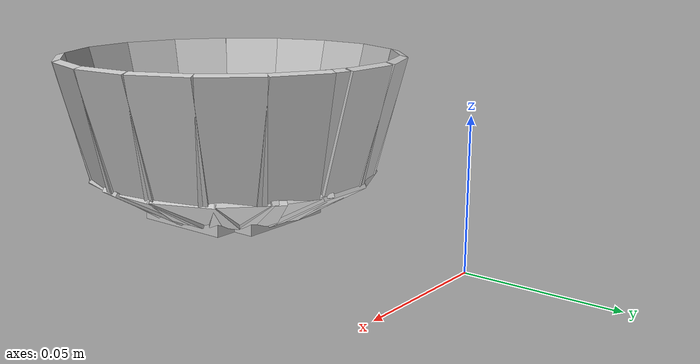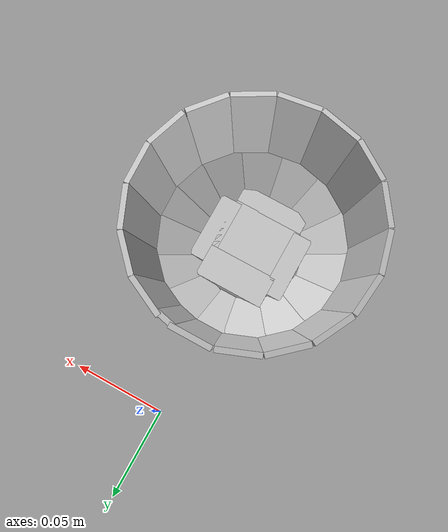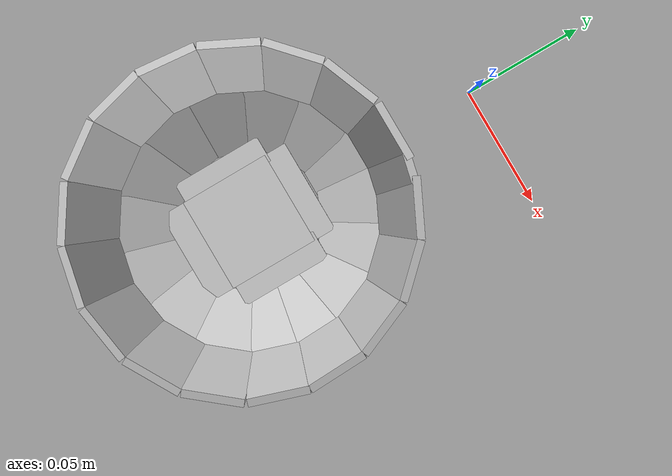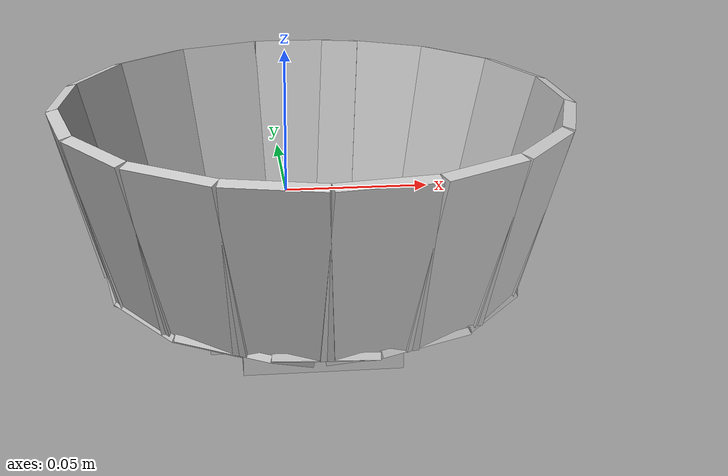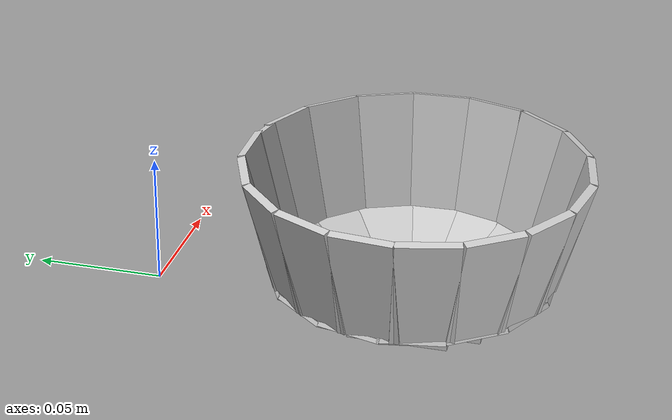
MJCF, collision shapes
<mujoco model="akita_black_bowl_interference_light_grey_large">
  <asset>
    <texture file="akita_black_bowl_interference_light_grey_large_texture.png" name="tex-akita_black_bowl_interference_light_grey_large" type="2d" />
    <material name="akita_black_bowl_interference_light_grey_large" reflectance="0.5" texrepeat="1 1" texture="tex-akita_black_bowl_interference_light_grey_large" texuniform="false" />
    <mesh file="visual/akita_bowl_vis.msh" name="akita_bowl_vis" scale="0.84 0.84 0.84" />
  </asset>
  <worldbody>
    <body>
      <body name="object" pos="0 -0.1 0">
        <geom solimp="0.998 0.998 0.001" solref="0.001 1" density="100" friction="0.95 0.3 0.1" type="mesh" mesh="akita_bowl_vis" conaffinity="0" contype="0" group="1" material="akita_black_bowl_interference_light_grey_large" />
        <geom solimp="0.998 0.998 0.001" solref="0.001 1" density="100" friction="0.95 0.3 0.1" type="box" pos="-0.00012 0.04033 0.01127" quat="0.60990 -0.35780 -0.35780 -0.60990" size="0.00085 0.01190 0.01424" group="0" rgba="0.8 0.8 0.8 0.3" />
        <geom solimp="0.998 0.998 0.001" solref="0.001 1" density="100" friction="0.95 0.3 0.1" type="box" pos="-0.01763 0.03620 0.01151" quat="0.45959 -0.42672 0.26704 0.73169" size="0.00085 0.01190 0.01424" group="0" rgba="0.8 0.8 0.8 0.3" />
        <geom solimp="0.998 0.998 0.001" solref="0.001 1" density="100" friction="0.95 0.3 0.1" type="box" pos="-0.03126 0.02530 0.01170" quat="0.29172 -0.47299 0.16619 0.81459" size="0.00085 0.01190 0.01424" group="0" rgba="0.8 0.8 0.8 0.3" />
        <geom solimp="0.998 0.998 0.001" solref="0.001 1" density="100" friction="0.95 0.3 0.1" type="box" pos="-0.03904 0.00952 0.01181" quat="0.10855 -0.49698 0.05658 0.85908" size="0.00085 0.01190 0.01424" group="0" rgba="0.8 0.8 0.8 0.3" />
        <geom solimp="0.998 0.998 0.001" solref="0.001 1" density="100" friction="0.95 0.3 0.1" type="box" pos="-0.03944 -0.00762 0.01181" quat="0.49761 -0.07722 0.86246 0.05074" size="0.00085 0.01190 0.01424" group="0" rgba="0.8 0.8 0.8 0.3" />
        <geom solimp="0.998 0.998 0.001" solref="0.001 1" density="100" friction="0.95 0.3 0.1" type="box" pos="-0.03230 -0.02388 0.01181" quat="0.47408 -0.26597 0.82406 0.15949" size="0.00085 0.01190 0.01424" group="0" rgba="0.8 0.8 0.8 0.3" />
        <geom solimp="0.998 0.998 0.001" solref="0.001 1" density="100" friction="0.95 0.3 0.1" type="box" pos="-0.01868 -0.03557 0.01181" quat="0.42646 -0.44336 0.74380 0.26138" size="0.00085 0.01190 0.01424" group="0" rgba="0.8 0.8 0.8 0.3" />
        <geom solimp="0.998 0.998 0.001" solref="0.001 1" density="100" friction="0.95 0.3 0.1" type="box" pos="-0.00145 -0.04015 0.01181" quat="0.59728 0.35787 0.34946 -0.62695" size="0.00085 0.01190 0.01424" group="0" rgba="0.8 0.8 0.8 0.3" />
        <geom solimp="0.998 0.998 0.001" solref="0.001 1" density="100" friction="0.95 0.3 0.1" type="box" pos="0.01621 -0.03676 0.01181" quat="0.72249 0.27055 0.42070 -0.47731" size="0.00085 0.01190 0.01424" group="0" rgba="0.8 0.8 0.8 0.3" />
        <geom solimp="0.998 0.998 0.001" solref="0.001 1" density="100" friction="0.95 0.3 0.1" type="box" pos="0.03028 -0.02641 0.01181" quat="0.17267 -0.80894 0.30891 0.46945" size="0.00085 0.01190 0.01424" group="0" rgba="0.8 0.8 0.8 0.3" />
        <geom solimp="0.998 0.998 0.001" solref="0.001 1" density="100" friction="0.95 0.3 0.1" type="box" pos="0.03866 -0.01092 0.01181" quat="0.85700 0.06550 0.49588 -0.12397" size="0.00085 0.01190 0.01424" group="0" rgba="0.8 0.8 0.8 0.3" />
        <geom solimp="0.998 0.998 0.001" solref="0.001 1" density="100" friction="0.95 0.3 0.1" type="box" pos="0.03866 -0.01092 0.01181" quat="0.85700 0.06550 0.49588 -0.12397" size="0.00085 0.01190 0.01424" group="0" rgba="0.8 0.8 0.8 0.3" />
        <geom solimp="0.998 0.998 0.001" solref="0.001 1" density="100" friction="0.95 0.3 0.1" type="box" pos="0.04018 0.00026 0.01181" quat="0.86591 -0.00473 0.50017 -0.00248" size="0.00085 0.01190 0.01424" group="0" rgba="0.8 0.8 0.8 0.3" />
        <geom solimp="0.998 0.998 0.001" solref="0.001 1" density="100" friction="0.95 0.3 0.1" type="box" pos="0.03643 0.01693 0.01181" quat="0.84663 -0.11101 0.48771 0.18175" size="0.00085 0.01190 0.01424" group="0" rgba="0.8 0.8 0.8 0.3" />
        <geom solimp="0.998 0.998 0.001" solref="0.001 1" density="100" friction="0.95 0.3 0.1" type="box" pos="0.02587 0.03074 0.01181" quat="0.21392 0.78724 0.36065 -0.45213" size="0.00085 0.01190 0.01424" group="0" rgba="0.8 0.8 0.8 0.3" />
        <geom solimp="0.998 0.998 0.001" solref="0.001 1" density="100" friction="0.95 0.3 0.1" type="box" pos="0.01388 0.03770 0.01181" quat="0.71324 -0.28870 0.40847 0.49101" size="0.00085 0.01190 0.01424" group="0" rgba="0.8 0.8 0.8 0.3" />
        <geom solimp="0.998 0.998 0.001" solref="0.001 1" density="100" friction="0.95 0.3 0.1" type="box" pos="-0.00012 0.05654 0.04040" quat="0.09041 0.70130 0.70130 -0.09041" size="0.00154 0.01121 0.02250" group="0" rgba="0.8 0.8 0.8 0.3" />
        <geom solimp="0.998 0.998 0.001" solref="0.001 1" density="100" friction="0.95 0.3 0.1" type="box" pos="-0.02069 0.05262 0.04040" quat="0.10558 0.55930 0.81905 -0.07209" size="0.00154 0.01121 0.02250" group="0" rgba="0.8 0.8 0.8 0.3" />
        <geom solimp="0.998 0.998 0.001" solref="0.001 1" density="100" friction="0.95 0.3 0.1" type="box" pos="-0.03809 0.04180 0.04040" quat="0.11689 0.40164 0.90683 -0.05176" size="0.00154 0.01121 0.02250" group="0" rgba="0.8 0.8 0.8 0.3" />
        <geom solimp="0.998 0.998 0.001" solref="0.001 1" density="100" friction="0.95 0.3 0.1" type="box" pos="-0.05057 0.02530 0.04040" quat="0.22890 -0.12439 0.02951 0.96502" size="0.00154 0.01121 0.02250" group="0" rgba="0.8 0.8 0.8 0.3" />
        <geom solimp="0.998 0.998 0.001" solref="0.001 1" density="100" friction="0.95 0.3 0.1" type="box" pos="-0.05627 0.00552 0.04040" quat="0.12768 0.04949 0.99056 -0.00638" size="0.00154 0.01121 0.02250" group="0" rgba="0.8 0.8 0.8 0.3" />
        <geom solimp="0.998 0.998 0.001" solref="0.001 1" density="100" friction="0.95 0.3 0.1" type="box" pos="-0.05466 -0.01445 0.04040" quat="0.12679 0.12680 0.01635 -0.98366" size="0.00154 0.01121 0.02250" group="0" rgba="0.8 0.8 0.8 0.3" />
        <geom solimp="0.998 0.998 0.001" solref="0.001 1" density="100" friction="0.95 0.3 0.1" type="box" pos="-0.04590 -0.03301 0.04040" quat="0.12173 -0.30325 0.94430 0.03909" size="0.00154 0.01121 0.02250" group="0" rgba="0.8 0.8 0.8 0.3" />
        <geom solimp="0.998 0.998 0.001" solref="0.001 1" density="100" friction="0.95 0.3 0.1" type="box" pos="-0.03091 -0.04735 0.04040" quat="0.11249 -0.47128 0.87267 0.06075" size="0.00154 0.01121 0.02250" group="0" rgba="0.8 0.8 0.8 0.3" />
        <geom solimp="0.998 0.998 0.001" solref="0.001 1" density="100" friction="0.95 0.3 0.1" type="box" pos="-0.01212 -0.05522 0.04040" quat="0.62080 0.09971 0.08003 -0.77348" size="0.00154 0.01121 0.02250" group="0" rgba="0.8 0.8 0.8 0.3" />
        <geom solimp="0.998 0.998 0.001" solref="0.001 1" density="100" friction="0.95 0.3 0.1" type="box" pos="0.00838 -0.05592 0.04040" quat="0.75082 0.08352 0.09678 -0.64802" size="0.00154 0.01121 0.02250" group="0" rgba="0.8 0.8 0.8 0.3" />
        <geom solimp="0.998 0.998 0.001" solref="0.001 1" density="100" friction="0.95 0.3 0.1" type="box" pos="0.02790 -0.04918 0.04040" quat="0.06445 -0.85651 0.50004 0.11041" size="0.00154 0.01121 0.02250" group="0" rgba="0.8 0.8 0.8 0.3" />
        <geom solimp="0.998 0.998 0.001" solref="0.001 1" density="100" friction="0.95 0.3 0.1" type="box" pos="0.04357 -0.03604 0.04040" quat="0.93283 0.04342 0.12024 -0.33687" size="0.00154 0.01121 0.02250" group="0" rgba="0.8 0.8 0.8 0.3" />
        <geom solimp="0.998 0.998 0.001" solref="0.001 1" density="100" friction="0.95 0.3 0.1" type="box" pos="0.05370 -0.01770 0.04040" quat="0.02040 -0.97909 0.15826 0.12620" size="0.00154 0.01121 0.02250" group="0" rgba="0.8 0.8 0.8 0.3" />
        <geom solimp="0.998 0.998 0.001" solref="0.001 1" density="100" friction="0.95 0.3 0.1" type="box" pos="0.05650 0.00222 0.04040" quat="0.00238 0.99162 0.01844 -0.12782" size="0.00154 0.01121 0.02250" group="0" rgba="0.8 0.8 0.8 0.3" />
        <geom solimp="0.998 0.998 0.001" solref="0.001 1" density="100" friction="0.95 0.3 0.1" type="box" pos="0.05650 0.00222 0.04040" quat="0.00238 0.99162 0.01844 -0.12782" size="0.00154 0.01121 0.02250" group="0" rgba="0.8 0.8 0.8 0.3" />
        <geom solimp="0.998 0.998 0.001" solref="0.001 1" density="100" friction="0.95 0.3 0.1" type="box" pos="0.05209 0.02198 0.04040" quat="0.02524 0.97229 0.19574 -0.12533" size="0.00154 0.01121 0.02250" group="0" rgba="0.8 0.8 0.8 0.3" />
        <geom solimp="0.998 0.998 0.001" solref="0.001 1" density="100" friction="0.95 0.3 0.1" type="box" pos="0.04099 0.03894 0.04040" quat="0.04729 0.92146 0.36683 -0.11878" size="0.00154 0.01121 0.02250" group="0" rgba="0.8 0.8 0.8 0.3" />
        <geom solimp="0.998 0.998 0.001" solref="0.001 1" density="100" friction="0.95 0.3 0.1" type="box" pos="0.02480 0.05081 0.04040" quat="0.06760 0.84175 0.52452 -0.10850" size="0.00154 0.01121 0.02250" group="0" rgba="0.8 0.8 0.8 0.3" />
        <geom solimp="0.998 0.998 0.001" solref="0.001 1" density="100" friction="0.95 0.3 0.1" type="box" pos="0.01267 0.05510 0.04040" quat="0.07953 0.77656 0.61693 -0.10010" size="0.00150 0.00533 0.02246" group="0" rgba="0.8 0.8 0.8 0.3" />
        <geom solimp="0.998 0.998 0.001" solref="0.001 1" density="100" friction="0.95 0.3 0.1" type="box" pos="-0.00000 -0.00090 0.00500" quat="0.70711 0.00000 0.70711 0.00000" size="0.00310 0.01856 0.01940" group="0" rgba="0.8 0.8 0.8 0.3" />
        <geom solimp="0.998 0.998 0.001" solref="0.001 1" density="100" friction="0.95 0.3 0.1" type="box" pos="-0.00000 -0.02425 0.00500" quat="0.70711 0.00000 0.70711 0.00000" size="0.00310 0.00517 0.01940" group="0" rgba="0.8 0.8 0.8 0.3" />
        <geom solimp="0.998 0.998 0.001" solref="0.001 1" density="100" friction="0.95 0.3 0.1" type="box" pos="0.02185 0.00019 0.00500" quat="0.50000 -0.50000 0.50000 0.50000" size="0.00310 0.00594 0.01856" group="0" rgba="0.8 0.8 0.8 0.3" />
        <geom solimp="0.998 0.998 0.001" solref="0.001 1" density="100" friction="0.95 0.3 0.1" type="box" pos="-0.02172 0.00005 0.00500" quat="0.50000 -0.50000 0.50000 0.50000" size="0.00310 0.00544 0.01856" group="0" rgba="0.8 0.8 0.8 0.3" />
        <geom solimp="0.998 0.998 0.001" solref="0.001 1" density="100" friction="0.95 0.3 0.1" type="box" pos="-0.00000 0.01788 0.00500" quat="0.00000 0.70711 0.00000 -0.70711" size="0.00310 0.00889 0.01940" group="0" rgba="0.8 0.8 0.8 0.3" />
      </body>
      <site rgba="0 0 0 0" size="0.00600" pos="0.00000 0.00000 -0.07200" name="bottom_site" />
      <site rgba="0 0 0 0" size="0.00600" pos="0.00000 0.00000 0.04800" name="top_site" />
      <site rgba="0 0 0 0" size="0.00600" pos="0.03000 0.03000 0.00000" name="horizontal_radius_site" />
    </body>
  </worldbody>
</mujoco>
